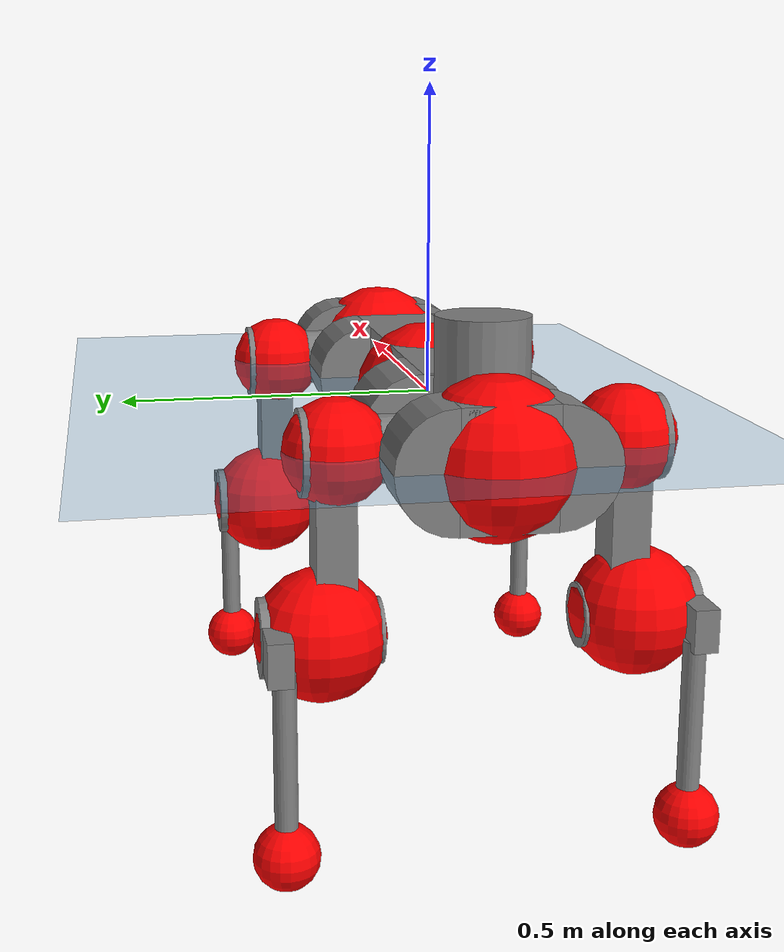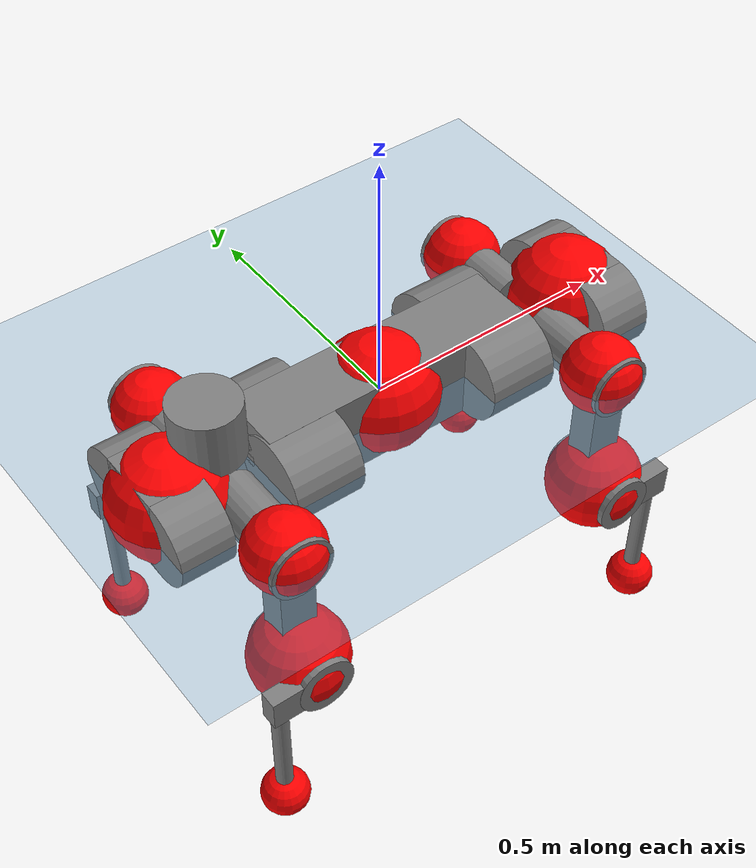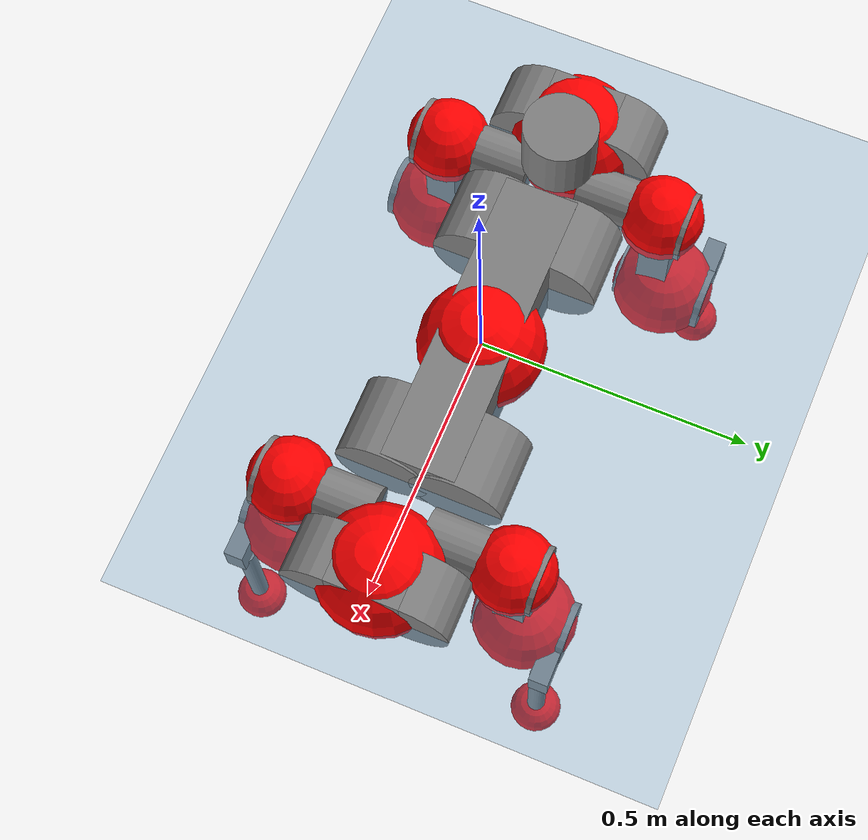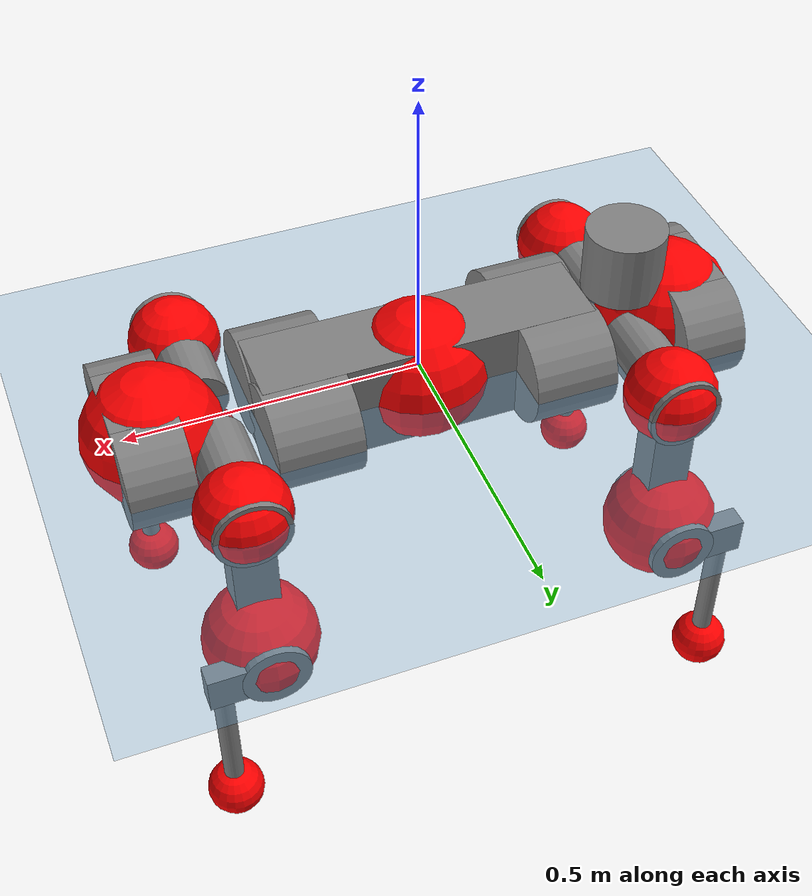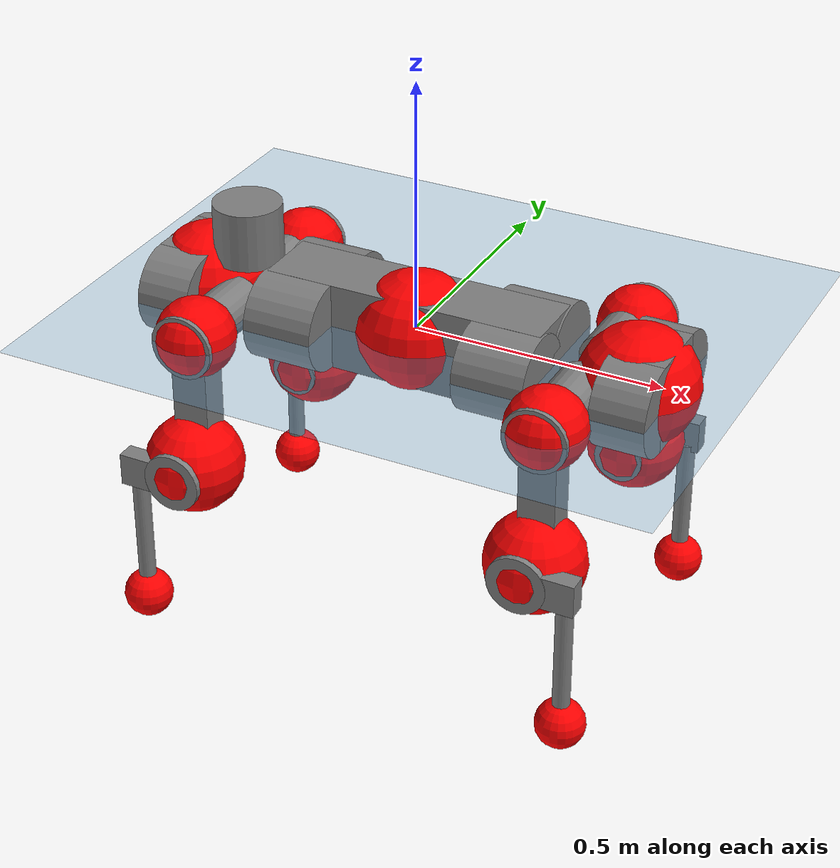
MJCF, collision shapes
<mujoco model="anymal_c">
  <compiler angle="radian" assetdir="assets" balanceinertia="true" inertiafromgeom="false"/>

  <option timestep="0.005" density="1.2" viscosity="2e-05"/>

  <size nkey="1"/>

  <visual>
    <quality shadowsize="8192"/>
    <map shadowclip="0.5"/>
  </visual>

  <default>
    <default class="/">
      <material specular="0" shininess="0.25"/>
      <geom contype="0" conaffinity="0" group="1" solref="-1000 -80"/>
      <site size="0.01 0.005 0.005" group="5"/>
      <general forcelimited="true" forcerange="-80 80" biastype="affine" gainprm="80" biasprm="0 -80 -2"/>
      <default class="anymal_c">
        <joint armature="0.01" damping="0.01" frictionloss="0.1"/>
        <default class="visual">
          <geom type="mesh" group="2"/>
          <default class="visual_zflip"/>
        </default>
        <default class="collision">
          <geom type="cylinder" group="3"/>
          <default class="foot">
            <geom size="0.03 0 0" type="sphere" condim="6" priority="1" friction="0.8 0.02 0.01" solimp="0.015 1 0.03"/>
          </default>
        </default>
      </default>
      <default class="reward_collision_sphere">
        <geom group="5" rgba="1 0 0 1"/>
      </default>
    </default>
  </default>

  <asset>
    <texture type="skybox" colorspace="auto" name="//unnamed_texture_0" builtin="gradient" rgb1="0.95 0.95 0.95" rgb2="0.95 0.95 0.95" width="100" height="600"/>
    <texture type="2d" colorspace="auto" name="texplane" builtin="checker" rgb1="0.345 0.575 0.748" rgb2="0.345 0.575 0.748" markrgb="1 1 1" width="512" height="512"/>
    <texture type="2d" colorspace="linear" name="base" file="base.png"/>
    <texture type="2d" colorspace="linear" name="top_shell" file="top_shell.png"/>
    <texture type="2d" colorspace="linear" name="bottom_shell" file="bottom_shell.png"/>
    <texture type="2d" colorspace="linear" name="remote" file="remote.png"/>
    <texture type="2d" colorspace="linear" name="hatch" file="hatch.png"/>
    <texture type="2d" colorspace="linear" name="handle" file="handle.png"/>
    <texture type="2d" colorspace="linear" name="face" file="face.png"/>
    <texture type="2d" colorspace="linear" name="battery" file="battery.png"/>
    <texture type="2d" colorspace="linear" name="lidar_cage" file="lidar_cage.png"/>
    <texture type="2d" colorspace="linear" name="depth_camera" file="depth_camera.png"/>
    <texture type="2d" colorspace="linear" name="wide_angle_camera" file="wide_angle_camera.png"/>
    <texture type="2d" colorspace="linear" name="lidar" file="lidar.png"/>
    <texture type="2d" colorspace="linear" name="drive" file="drive.png"/>
    <texture type="2d" colorspace="linear" name="hip_l" file="hip_l.png"/>
    <texture type="2d" colorspace="linear" name="shank_l" file="shank_l.png"/>
    <texture type="2d" colorspace="linear" name="foot" file="foot.png"/>
    <texture type="2d" colorspace="linear" name="thigh" file="thigh.png"/>
    <texture type="2d" colorspace="linear" name="shank_r" file="shank_r.png"/>
    <texture type="2d" colorspace="linear" name="hip_r" file="hip_r.png"/>
    <material name="MatPlane" class="/" texture="texplane" texuniform="true" texrepeat="2 2" specular="0.9" shininess="0.5"/>
    <material name="black_plastic" class="/" rgba="0.007 0.007 0.007 1"/>
    <material name="green" class="/" rgba="0.052 0.178 0.033 1"/>
    <material name="red" class="/" rgba="0.178 0.006 0.005 1"/>
    <material name="yellow" class="/" rgba="0.178 0.119 0.006 1"/>
    <material name="lwl" class="/" rgba="0.8 0.8 0.8 1"/>
    <material name="base" class="/" texture="base"/>
    <material name="top_shell" class="/" texture="top_shell"/>
    <material name="bottom_shell" class="/" texture="bottom_shell"/>
    <material name="hip_l" class="/" texture="hip_l"/>
    <material name="thigh" class="/" texture="thigh"/>
    <material name="shank_l" class="/" texture="shank_l"/>
    <material name="foot" class="/" texture="foot"/>
    <material name="hip_r" class="/" texture="hip_r"/>
    <material name="shank" class="/" texture="shank_r"/>
    <material name="hatch" class="/" texture="hatch"/>
    <material name="remote" class="/" texture="remote"/>
    <material name="handle" class="/" texture="handle"/>
    <material name="face" class="/" texture="face"/>
    <material name="depth_camera" class="/" texture="depth_camera"/>
    <material name="wide_angle_camera" class="/" texture="wide_angle_camera"/>
    <material name="battery" class="/" texture="battery"/>
    <material name="lidar_cage" class="/" texture="lidar_cage"/>
    <material name="lidar" class="/" texture="lidar"/>
    <material name="drive" class="/" texture="drive"/>
    <mesh name="base_0" class="/" file="base_0.obj"/>
    <mesh name="base_1" class="/" file="base_1.obj"/>
    <mesh name="base_2" class="/" file="base_2.obj"/>
    <mesh name="base_3" class="/" file="base_3.obj"/>
    <mesh name="base_4" class="/" file="base_4.obj"/>
    <mesh name="base_5" class="/" file="base_5.obj"/>
    <mesh name="top_shell" class="/" file="top_shell.obj"/>
    <mesh name="bottom_shell" class="/" file="bottom_shell.obj"/>
    <mesh name="remote" class="/" file="remote.obj"/>
    <mesh name="handle" class="/" file="handle.obj"/>
    <mesh name="face" class="/" file="face.obj"/>
    <mesh name="wide_angle_camera" class="/" file="wide_angle_camera.obj"/>
    <mesh name="depth_camera" class="/" file="depth_camera.obj"/>
    <mesh name="battery" class="/" file="battery.obj"/>
    <mesh name="lidar_cage" class="/" file="lidar_cage.obj"/>
    <mesh name="lidar" class="/" file="lidar.obj"/>
    <mesh name="drive" class="/" file="drive.obj"/>
    <mesh name="hip_l" class="/" file="hip_l.obj"/>
    <mesh name="thigh" class="/" file="thigh.obj"/>
    <mesh name="shank_l" class="/" file="shank_l.obj"/>
    <mesh name="foot" class="/" file="foot.obj"/>
    <mesh name="hip_r" class="/" file="hip_r.obj"/>
    <mesh name="hatch" class="/" file="hatch.obj"/>
    <mesh name="shank_r" class="/" file="shank_r.obj"/>
  </asset>

  <worldbody>
    <geom name="floor" class="/" size="100 100 0.125" type="plane" group="0" material="MatPlane"/>
    <light name="toplight_shadow" class="/" pos="0 0 5" dir="0.0990148 0.0990148 -0.990148" type="directional" ambient="0.04 0.04 0.04" diffuse="0.55 0.55 0.55" specular="0.12 0.12 0.12"/>
    <light name="toplight_fill" class="/" pos="0 0 5" dir="0.0990148 0.0990148 -0.990148" type="directional" castshadow="false" ambient="0.04 0.04 0.04" diffuse="0.3 0.3 0.3" specular="0.08 0.08 0.08"/>
    <body name="trunk" childclass="anymal_c" pos="0.000389731 0.00103787 -0.00270559" quat="1 0.000168026 0.000453506 -0.000405984">
      <inertial pos="0.00158354 0.00222989 0.0451499" quat="0.499243 0.500407 0.500436 0.499913" mass="18.3407" diaginertia="0.659092 0.613605 0.171559"/>
      <joint name="//unnamed_joint_0" type="free" armature="0" damping="0" frictionloss="0"/>
      <geom name="//unnamed_geom_1" class="visual" material="green" mesh="base_0"/>
      <geom name="//unnamed_geom_2" class="visual" material="yellow" mesh="base_1"/>
      <geom name="//unnamed_geom_3" class="visual" material="red" mesh="base_2"/>
      <geom name="//unnamed_geom_4" class="visual" material="black_plastic" mesh="base_3"/>
      <geom name="//unnamed_geom_5" class="visual" material="lwl" mesh="base_4"/>
      <geom name="//unnamed_geom_6" class="visual" material="base" mesh="base_5"/>
      <geom name="trunk_1" class="collision" size="0.284628 0.0687032 0.0883327" type="box"/>
      <geom name="trunk_2" class="collision" size="0.0883327 0.0711569" pos="0.218277 0.0695781 0" quat="0.707107 0 0.707107 0"/>
      <geom name="trunk_3" class="collision" size="0.0883327 0.0711569" pos="-0.218277 0.0695781 0" quat="0.707107 0 0.707107 0"/>
      <geom name="trunk_4" class="collision" size="0.0883327 0.0711569" pos="0.218277 -0.0695781 0" quat="0.707107 0 0.707107 0"/>
      <geom name="trunk_5" class="collision" size="0.0883327 0.0711569" pos="-0.218277 -0.0695781 0" quat="0.707107 0 0.707107 0"/>
      <geom name="//unnamed_geom_12" class="visual" material="top_shell" mesh="top_shell"/>
      <geom name="//unnamed_geom_13" class="visual" material="bottom_shell" mesh="bottom_shell"/>
      <geom name="//unnamed_geom_14" class="visual" material="remote" mesh="remote"/>
      <geom name="//unnamed_geom_15" class="visual" material="handle" mesh="handle"/>
      <geom name="//unnamed_geom_16" class="visual" pos="0.415981 0 0" quat="1 0 0 0" material="face" mesh="face"/>
      <geom name="trunk_6" class="collision" size="0.0539811 0.0687032 0.0883327" pos="0.471178 0 0" type="box"/>
      <geom name="//unnamed_geom_18" class="collision" size="0.0883327 0.0539811" pos="0.471178 0.0695781 0" quat="0.707107 0 0.707107 0"/>
      <geom name="//unnamed_geom_19" class="collision" size="0.0883327 0.0539811" pos="0.471178 -0.0695781 0" quat="0.707107 0 0.707107 0"/>
      <geom name="//unnamed_geom_20" class="visual" pos="0.463298 0 -0.0272179" quat="0.965926 0 0.258819 0" material="depth_camera" mesh="depth_camera"/>
      <geom name="//unnamed_geom_21" class="visual" pos="0.514833 0 0.0141747" material="wide_angle_camera" mesh="wide_angle_camera"/>
      <geom name="//unnamed_geom_22" class="visual_zflip" pos="-0.415981 0 0" quat="0 0 0 1" material="face" mesh="face"/>
      <geom name="trunk_7" class="collision" size="0.0539811 0.0687032 0.0883327" pos="-0.471178 0 0" quat="0 0 0 1" type="box"/>
      <geom name="//unnamed_geom_24" class="collision" size="0.0883327 0.0539811" pos="-0.471178 -0.0695781 0" quat="0 -0.707107 0 0.707107"/>
      <geom name="//unnamed_geom_25" class="collision" size="0.0883327 0.0539811" pos="-0.471178 0.0695781 0" quat="0 -0.707107 0 0.707107"/>
      <geom name="//unnamed_geom_26" class="visual" pos="-0.463298 0 -0.0272179" quat="0 -0.258819 0 0.965926" material="depth_camera" mesh="depth_camera"/>
      <geom name="//unnamed_geom_27" class="visual_zflip" pos="-0.514833 0 0.0141747" quat="0 0 0 1" material="wide_angle_camera" mesh="wide_angle_camera"/>
      <geom name="//unnamed_geom_28" class="visual" material="battery" mesh="battery"/>
      <geom name="//unnamed_geom_29" class="visual" pos="0 0.0758708 0.0279377" quat="0.683013 -0.183013 0.183013 0.683013" material="depth_camera" mesh="depth_camera"/>
      <geom name="//unnamed_geom_30" class="visual" pos="0 -0.0758708 0.0279377" quat="0.683013 0.183013 0.183013 -0.683013" material="depth_camera" mesh="depth_camera"/>
      <geom name="//unnamed_geom_31" class="visual" pos="-0.365301 0 0.0695954" quat="1 0 0 0" material="lidar_cage" mesh="lidar_cage"/>
      <geom name="trunk_8" class="collision" size="0.0687032 0.0588885" pos="-0.365301 0 0.126408"/>
      <geom name="//unnamed_geom_33" class="visual" pos="-0.365301 -3.77197e-06 0.134646" quat="0.707107 0 0 -0.707107" material="lidar" mesh="lidar"/>
      <geom name="//unnamed_geom_34" class="visual" pos="0.300972 0.103356 8.12414e-10" quat="0.258819 0.965926 0 0" material="drive" mesh="drive"/>
      <geom name="//unnamed_geom_35" class="visual" pos="0.300972 -0.103356 -8.12414e-10" quat="0.258819 -0.965926 0 0" material="drive" mesh="drive"/>
      <geom name="//unnamed_geom_36" class="visual" pos="-0.300972 0.103356 -8.12414e-10" quat="0 0 0.965926 -0.258819" material="drive" mesh="drive"/>
      <geom name="//unnamed_geom_37" class="visual" pos="-0.300972 -0.103356 8.12414e-10" quat="0 0 -0.965926 -0.258819" material="drive" mesh="drive"/>
      <geom name="//unnamed_geom_38" class="visual" pos="0.116415 0 0.069122" quat="1 0 0 0" material="hatch" mesh="hatch"/>
      <geom name="//unnamed_geom_39" class="reward_collision_sphere" size="0.117777"/>
      <geom name="//unnamed_geom_40" class="reward_collision_sphere" size="0.117777" pos="0.451608 0 0"/>
      <geom name="//unnamed_geom_41" class="reward_collision_sphere" size="0.117777" pos="-0.451608 0 0"/>
      <site name="imu" pos="0.254705 0.0224413 0.0513357" size="0.00981475"/>
      <camera name="track" pos="0 -1.98795 0" quat="0.707107 0.707107 0 0" mode="trackcom"/>
      <camera name="ego_camera" pos="0.451608 0 -0.0378751" quat="-0.5 -0.5 0.5 0.5"/>
      <body name="LF_HIP" pos="0.301508 0.102893 0.00144246" quat="0.258857 0.965915 0.00130119 -0.000322645">
        <inertial pos="0.0578269 -0.0174689 -0.0071985" quat="-0.125254 0.709362 -0.138712 0.679614" mass="2.56135" diaginertia="0.00603709 0.00498055 0.00251177"/>
        <joint name="LF_HAA" pos="0 0 0" axis="0.999993 -0.00255842 -0.00272144" range="-0.705319 0.501423" armature="0.00982705" damping="0.0245769" frictionloss="0.0995116"/>
        <geom name="//unnamed_geom_42" class="visual" pos="0 4.77907e-05 -7.84958e-06" quat="0.258819 -0.965926 0 0" material="hip_l" mesh="hip_l"/>
        <geom name="//unnamed_geom_43" class="visual" pos="0.0601141 -0.0726979 -0.0416238" quat="0.183013 -0.683013 0.683013 0.183013" material="drive" mesh="drive"/>
        <geom name="//unnamed_geom_44" class="collision" size="0.0490737 0.0687032" pos="0.0601141 -0.0118877 -0.00653818" quat="-0.353553 -0.612372 0.612372 -0.353553"/>
        <body name="LF_THIGH" pos="0.0633218 -0.0735827 -0.0363505" quat="0.183044 -0.682574 0.683624 0.182336">
          <inertial pos="0.0337336 -0.00270252 -0.234014" quat="0.993151 -0.00530854 -0.080717 0.0843073" mass="2.84694" diaginertia="0.0308329 0.0277122 0.0030874"/>
          <joint name="LF_HFE" pos="0 0 0" axis="0.999972 -0.00566834 0.00478961" stiffness="0.000521605" range="-3.09699 3.1344" armature="0.0086814" damping="0.010636" frictionloss="0.0880998"/>
          <geom name="//unnamed_geom_45" class="visual" pos="0.000191022 3.01006e-07 0" quat="0.707107 0 0 -0.707107" material="thigh" mesh="thigh"/>
          <geom name="//unnamed_geom_46" class="collision" size="0.0637958 0.039259" pos="0.040143 0 0" quat="0.5 0.5 -0.5 -0.5"/>
          <geom name="//unnamed_geom_47" class="collision" size="0.0368053 0.0294442 0.138696" pos="0.0301072 0 -0.133807" quat="0.707107 0 0 -0.707107" type="box"/>
          <geom name="//unnamed_geom_48" class="visual" pos="0.100658 0 -0.26986" quat="1 0 0 0" material="drive" mesh="drive"/>
          <geom name="//unnamed_geom_49" class="collision" size="0.0490737 0.0687032" pos="0.0304083 0 -0.26986" quat="0.707107 0 0.707107 0"/>
          <geom name="//unnamed_geom_50" class="reward_collision_sphere" size="0.078518" pos="0.0250893 0 0"/>
          <body name="LF_SHANK" pos="0.100508 -0.00163244 -0.269626" quat="0.999999 -0.000759026 0.000494923 0.0011614">
            <inertial pos="0.00334041 -0.0613223 -0.0736752" quat="0.992189 -0.121188 0.0090868 -0.0281345" mass="0.555248" diaginertia="0.00999936 0.00929273 0.000871175"/>
            <joint name="LF_KFE" pos="0 0 0" axis="0.999936 0.00805577 -0.00791321" stiffness="0.00730547" range="-3.16739 3.11964" armature="0.0110713" damping="0" frictionloss="0.111895"/>
            <geom name="//unnamed_geom_51" class="visual" pos="6.22881e-05 0.000332124 0" quat="0.707107 0 0 -0.707107" material="shank_l" mesh="shank_l"/>
            <geom name="LF_kfe_act" class="collision" size="0.0588885 0.0196295" pos="0.0200715 0 0" quat="0.5 0.5 -0.5 -0.5"/>
            <geom name="//unnamed_geom_53" class="collision" size="0.0564338 0.0331248 0.018648" pos="0.0200715 -0.0571524 0" quat="0.5 0.5 -0.5 -0.5" type="box"/>
            <geom name="//unnamed_geom_54" class="visual" pos="0.0130966 -0.0873129 -0.320016" quat="0.382683 0 0 -0.92388" material="foot" mesh="foot"/>
            <geom name="LF_calf" class="collision" size="0.0171758 0.138635" pos="0.0130966 -0.0874199 -0.160008" quat="0.707107 0 0 -0.707107"/>
            <geom name="LF_foot" class="foot" size="0.0272589" pos="0.0130966 -0.0874199 -0.298711" quat="0.707107 0 0 -0.707107"/>
            <geom name="//unnamed_geom_57" class="reward_collision_sphere" size="0.0981475" pos="-0.0501787 0 0"/>
            <geom name="//unnamed_geom_58" class="reward_collision_sphere" size="0.0490737" pos="0.0130966 -0.0874199 -0.298711"/>
            <site name="LF_foot" class="foot" pos="0.0130966 -0.0874199 -0.298711" quat="0.707107 0 0 -0.707107" size="0.00981475"/>
          </body>
        </body>
      </body>
      <body name="RF_HIP" pos="0.301341 -0.102741 -0.00105199" quat="0.258561 -0.965994 0.000432492 -0.00118014">
        <inertial pos="0.0598336 0.0137899 -0.00831463" quat="0.145097 0.676788 0.129693 0.709989" mass="2.6182" diaginertia="0.0055743 0.00460799 0.00233172"/>
        <joint name="RF_HAA" pos="0 0 0" axis="0.999925 -0.00318761 -0.0118382" range="-0.455016 0.716292" armature="0.0105396" damping="0.00481088" frictionloss="0.0885104"/>
        <geom name="//unnamed_geom_59" class="visual" pos="0 -4.77903e-05 -7.84956e-06" quat="0.258819 0.965926 0 0" material="hip_r" mesh="hip_r"/>
        <geom name="//unnamed_geom_60" class="visual" pos="0.0601141 0.0726979 -0.0416238" quat="0.183013 0.683013 0.683013 -0.183013" material="drive" mesh="drive"/>
        <geom name="//unnamed_geom_61" class="collision" size="0.0490737 0.0687032" pos="0.0601141 0.0118877 -0.00653818" quat="-0.353553 0.612372 0.612372 0.353553"/>
        <body name="RF_THIGH" pos="0.0608303 0.0715378 -0.0394908" quat="0.182523 0.683382 0.682968 -0.18229">
          <inertial pos="0.0338928 -0.00245377 -0.231385" quat="0.99229 0.00398373 -0.0759087 0.0978874" mass="2.9021" diaginertia="0.0300938 0.0273476 0.00315502"/>
          <joint name="RF_HFE" pos="0 0 0" axis="0.999957 0.00712333 0.00599244" range="-3.1338 3.18424" armature="0.00990622" damping="0.00855687" frictionloss="0.110929"/>
          <geom name="//unnamed_geom_62" class="visual" pos="0.000191022 3.01006e-07 0" quat="0.707107 0 0 -0.707107" material="thigh" mesh="thigh"/>
          <geom name="//unnamed_geom_63" class="collision" size="0.0637958 0.039259" pos="0.040143 0 0" quat="0.5 0.5 0.5 0.5"/>
          <geom name="//unnamed_geom_64" class="collision" size="0.0368053 0.0294442 0.138696" pos="0.0301072 0 -0.133807" quat="0.707107 0 0 0.707107" type="box"/>
          <geom name="//unnamed_geom_65" class="visual" pos="0.100658 0 -0.26986" quat="1 0 0 0" material="drive" mesh="drive"/>
          <geom name="//unnamed_geom_66" class="collision" size="0.0490737 0.0687032" pos="0.0304083 0 -0.26986" quat="0.707107 0 0.707107 0"/>
          <geom name="//unnamed_geom_67" class="reward_collision_sphere" size="0.078518" pos="0.0250893 0 0"/>
          <body name="RF_SHANK" pos="0.09848 -0.00214403 -0.271997" quat="1 -1.83969e-05 1.28237e-05 1.25758e-05">
            <inertial pos="0.00517764 0.0598809 -0.0762152" quat="0.991961 0.12374 -0.00188073 0.0264276" mass="0.561253" diaginertia="0.0103531 0.00895512 0.000822407"/>
            <joint name="RF_KFE" pos="0 0 0" axis="0.999997 0.00205697 0.0013272" range="-3.15618 3.19026" armature="0.00888974" damping="0.0212478" frictionloss="0.0862842"/>
            <geom name="//unnamed_geom_68" class="visual" pos="6.22878e-05 -0.000332123 0" quat="0.707107 0 0 0.707107" material="shank" mesh="shank_r"/>
            <geom name="RF_kfe_act" class="collision" size="0.0588885 0.0196295" pos="0.0200715 0 0" quat="0.5 0.5 0.5 0.5"/>
            <geom name="//unnamed_geom_70" class="collision" size="0.0564338 0.0331248 0.018648" pos="0.0200715 0.0571524 0" quat="0.5 0.5 0.5 0.5" type="box"/>
            <geom name="//unnamed_geom_71" class="visual" pos="0.0130967 0.0873129 -0.320016" quat="0.382683 0 0 0.92388" material="foot" mesh="foot"/>
            <geom name="RF_calf" class="collision" size="0.0171758 0.138635" pos="0.0130966 0.0874199 -0.160008" quat="0.707107 0 0 0.707107"/>
            <geom name="RF_foot" class="foot" size="0.0245849" pos="0.0130966 0.0874199 -0.298711" quat="0.707107 0 0 0.707107"/>
            <geom name="//unnamed_geom_74" class="reward_collision_sphere" size="0.0981475" pos="-0.0501787 0 0"/>
            <geom name="//unnamed_geom_75" class="reward_collision_sphere" size="0.0490737" pos="0.0130966 0.0874199 -0.298711"/>
            <site name="RF_foot" class="foot" pos="0.0130966 0.0874199 -0.298711" quat="0.707107 0 0 0.707107" size="0.00981475"/>
          </body>
        </body>
      </body>
      <body name="LH_HIP" pos="-0.300873 0.103003 -0.00178781" quat="-0.000284863 0.000190158 0.965921 -0.258837">
        <inertial pos="0.0593148 0.0160264 -0.0104482" quat="0.135404 0.678681 0.127512 0.710492" mass="2.68502" diaginertia="0.00593524 0.00483966 0.00256842"/>
        <joint name="LH_HAA" pos="0 0 0" axis="0.999999 0.00126167 -0.000886142" stiffness="0.00851216" range="-0.487366 0.667269" armature="0.00884331" damping="0.00168828" frictionloss="0.106134"/>
        <geom name="//unnamed_geom_76" class="visual" pos="0 -4.77903e-05 -7.84956e-06" quat="-0.258819 -0.965926 0 0" material="hip_r" mesh="hip_r"/>
        <geom name="//unnamed_geom_77" class="visual" pos="0.0601141 0.0726979 -0.0416238" quat="0.183013 0.683013 0.683013 -0.183013" material="drive" mesh="drive"/>
        <geom name="//unnamed_geom_78" class="collision" size="0.0490737 0.0687032" pos="0.0601141 0.0118877 -0.00653818" quat="-0.353553 0.612372 0.612372 0.353553"/>
        <body name="LH_THIGH" pos="0.0597642 0.0703234 -0.0386069" quat="0.183078 0.68304 0.682967 -0.183013">
          <inertial pos="0.0307105 -0.00010706 -0.232391" quat="0.993059 0.00391647 -0.0753592 0.0902208" mass="2.98494" diaginertia="0.0309481 0.0294658 0.00334891"/>
          <joint name="LH_HFE" pos="0 0 0" axis="0.999926 -0.0110945 0.00494557" stiffness="0.00891096" range="-3.16204 3.11788" armature="0.0109473" damping="0" frictionloss="0.0986613"/>
          <geom name="//unnamed_geom_79" class="visual" pos="0.000191022 3.01006e-07 0" quat="0.707107 0 0 -0.707107" material="thigh" mesh="thigh"/>
          <geom name="//unnamed_geom_80" class="collision" size="0.0637958 0.039259" pos="0.040143 0 0" quat="0.5 0.5 -0.5 -0.5"/>
          <geom name="//unnamed_geom_81" class="collision" size="0.0368053 0.0294442 0.138696" pos="0.0301072 0 -0.133807" quat="0.707107 0 0 -0.707107" type="box"/>
          <geom name="//unnamed_geom_82" class="visual" pos="0.100658 0 -0.26986" quat="1 0 0 0" material="drive" mesh="drive"/>
          <geom name="//unnamed_geom_83" class="collision" size="0.0490737 0.0687032" pos="0.0304083 0 -0.26986" quat="0.707107 0 0.707107 0"/>
          <geom name="//unnamed_geom_84" class="reward_collision_sphere" size="0.078518" pos="0.0250893 0 0"/>
          <body name="LH_SHANK" pos="0.0999358 -0.00101312 -0.270983" quat="1 1.70359e-05 -6.12324e-06 1.64812e-05">
            <inertial pos="0.00338867 0.0614654 -0.0773964" quat="0.992208 0.119509 0.00955235 0.0339173" mass="0.570862" diaginertia="0.0102233 0.00906525 0.000866458"/>
            <joint name="LH_KFE" pos="0 0 0" axis="0.999984 0.00390621 -0.00415466" range="-3.1462 3.1919" armature="0.0111047" damping="0" frictionloss="0.102293"/>
            <geom name="//unnamed_geom_85" class="visual" pos="6.22878e-05 -0.000332123 0" quat="-0.707107 0 0 -0.707107" material="shank" mesh="shank_r"/>
            <geom name="LH_kfe_act" class="collision" size="0.0588885 0.0196295" pos="0.0200715 0 0" quat="0.5 0.5 -0.5 -0.5"/>
            <geom name="//unnamed_geom_87" class="collision" size="0.0564338 0.0331248 0.018648" pos="0.0200715 0.0571524 0" quat="0.5 0.5 -0.5 -0.5" type="box"/>
            <geom name="//unnamed_geom_88" class="visual" pos="0.0130967 0.0873129 -0.320016" quat="-0.382683 0 0 -0.92388" material="foot" mesh="foot"/>
            <geom name="LH_calf" class="collision" size="0.0171758 0.138635" pos="0.0130966 0.0874199 -0.160008" quat="0.707107 0 0 -0.707107"/>
            <geom name="LH_foot" class="foot" size="0.0292439" pos="0.0130966 0.0874199 -0.298711" quat="0.707107 0 0 -0.707107"/>
            <geom name="//unnamed_geom_91" class="reward_collision_sphere" size="0.0981475" pos="-0.0501787 0 0"/>
            <geom name="//unnamed_geom_92" class="reward_collision_sphere" size="0.0490737" pos="0.0130966 0.0874199 -0.298711"/>
            <site name="LH_foot" class="foot" pos="0.0130966 0.0874199 -0.298711" quat="0.707107 0 0 -0.707107" size="0.00981475"/>
          </body>
        </body>
      </body>
      <body name="RH_HIP" pos="-0.299083 -0.106071 0.000133755" quat="-3.15382e-06 -0.000300865 -0.966022 -0.258461">
        <inertial pos="0.0576561 -0.012777 -0.00884292" quat="-0.135285 0.701842 -0.132684 0.686666" mass="2.6319" diaginertia="0.00600151 0.00483445 0.00254504"/>
        <joint name="RH_HAA" pos="0 0 0" axis="0.999995 0.00314907 -0.000793541" stiffness="0.00858255" range="-0.682972 0.49072" armature="0.00837789" damping="0.0130833" frictionloss="0.0993822"/>
        <geom name="//unnamed_geom_93" class="visual" pos="0 4.77907e-05 -7.84958e-06" quat="-0.258819 0.965926 0 0" material="hip_l" mesh="hip_l"/>
        <geom name="//unnamed_geom_94" class="visual" pos="0.0601141 -0.0726979 -0.0416238" quat="-0.183013 0.683013 -0.683013 -0.183013" material="drive" mesh="drive"/>
        <geom name="//unnamed_geom_95" class="collision" size="0.0490737 0.0687032" pos="0.0601141 -0.0118877 -0.00653818" quat="0.353553 0.612372 -0.612372 0.353553"/>
        <body name="RH_THIGH" pos="0.0588894 -0.073264 -0.0406788" quat="-0.183013 0.683013 -0.683011 -0.183014">
          <inertial pos="0.0319052 0.000479402 -0.23258" quat="0.993201 -0.00534978 -0.0799515 0.0844442" mass="2.84025" diaginertia="0.0308868 0.0300735 0.0032114"/>
          <joint name="RH_HFE" pos="0 0 0" axis="0.999994 0.00181374 -0.00290808" stiffness="0.0086307" range="-3.14541 3.18075" armature="0.0102629" damping="0.00537098" frictionloss="0.0996589"/>
          <geom name="//unnamed_geom_96" class="visual" pos="0.000191022 3.01006e-07 0" quat="0.707107 0 0 -0.707107" material="thigh" mesh="thigh"/>
          <geom name="//unnamed_geom_97" class="collision" size="0.0637958 0.039259" pos="0.040143 0 0" quat="0.5 0.5 0.5 0.5"/>
          <geom name="//unnamed_geom_98" class="collision" size="0.0368053 0.0294442 0.138696" pos="0.0301072 0 -0.133807" quat="0.707107 0 0 0.707107" type="box"/>
          <geom name="//unnamed_geom_99" class="visual" pos="0.100658 0 -0.26986" quat="1 0 0 0" material="drive" mesh="drive"/>
          <geom name="//unnamed_geom_100" class="collision" size="0.0490737 0.0687032" pos="0.0304083 0 -0.26986" quat="0.707107 0 0.707107 0"/>
          <geom name="//unnamed_geom_101" class="reward_collision_sphere" size="0.078518" pos="0.0250893 0 0"/>
          <body name="RH_SHANK" pos="0.100991 -0.00118793 -0.265904" quat="1 -1.29012e-06 0.000193657 -9.16415e-06">
            <inertial pos="0.00301449 -0.0612499 -0.0758659" quat="0.991823 -0.126516 -0.00320552 -0.0164306" mass="0.561369" diaginertia="0.0105998 0.00887307 0.000871483"/>
            <joint name="RH_KFE" pos="0 0 0" axis="0.999961 0.00307172 -0.00822695" range="-3.15161 3.13095" armature="0.00909193" damping="0.0175093" frictionloss="0.0917012"/>
            <geom name="//unnamed_geom_102" class="visual" pos="6.22881e-05 0.000332124 0" quat="0.707107 0 0 -0.707107" material="shank_l" mesh="shank_l"/>
            <geom name="RH_kfe_act" class="collision" size="0.0588885 0.0196295" pos="0.0200715 0 0" quat="0.5 0.5 0.5 0.5"/>
            <geom name="//unnamed_geom_104" class="collision" size="0.0564338 0.0331248 0.018648" pos="0.0200715 -0.0571524 0" quat="0.5 0.5 0.5 0.5" type="box"/>
            <geom name="//unnamed_geom_105" class="visual" pos="0.0130966 -0.0873129 -0.320016" quat="0.382683 0 0 -0.92388" material="foot" mesh="foot"/>
            <geom name="RH_calf" class="collision" size="0.0171758 0.138635" pos="0.0130966 -0.0874199 -0.160008" quat="0.707107 0 0 0.707107"/>
            <geom name="RH_foot" class="foot" size="0.0281769" pos="0.0130966 -0.0874199 -0.298711" quat="0.707107 0 0 0.707107"/>
            <geom name="//unnamed_geom_108" class="reward_collision_sphere" size="0.0981475" pos="-0.0501787 0 0"/>
            <geom name="//unnamed_geom_109" class="reward_collision_sphere" size="0.0490737" pos="0.0130966 -0.0874199 -0.298711"/>
            <site name="RH_foot" class="foot" pos="0.0130966 -0.0874199 -0.298711" quat="0.707107 0 0 0.707107" size="0.00981475"/>
          </body>
        </body>
      </body>
    </body>
  </worldbody>

  <contact>
    <pair class="/" geom1="floor" geom2="LF_foot" name="//unnamed_contact_0"/>
    <pair class="/" geom1="floor" geom2="RF_foot" name="//unnamed_contact_1"/>
    <pair class="/" geom1="floor" geom2="LH_foot" name="//unnamed_contact_2"/>
    <pair class="/" geom1="floor" geom2="RH_foot" name="//unnamed_contact_3"/>
  </contact>

  <actuator>
    <general name="LF_HAA" class="/" joint="LF_HAA" forcerange="-78.805 78.805" gainprm="83.8089" biasprm="0 -83.8089 -1.9708"/>
    <general name="LF_HFE" class="/" joint="LF_HFE" forcerange="-70.1932 70.1932" gainprm="83.8089" biasprm="0 -83.8089 -1.9708"/>
    <general name="LF_KFE" class="/" joint="LF_KFE" forcerange="-81.079 81.079" gainprm="83.8089" biasprm="0 -83.8089 -1.9708"/>
    <general name="RF_HAA" class="/" joint="RF_HAA" forcerange="-80.057 80.057" gainprm="83.8089" biasprm="0 -83.8089 -1.9708"/>
    <general name="RF_HFE" class="/" joint="RF_HFE" forcerange="-89.0293 89.0293" gainprm="83.8089" biasprm="0 -83.8089 -1.9708"/>
    <general name="RF_KFE" class="/" joint="RF_KFE" forcerange="-77.6738 77.6738" gainprm="83.8089" biasprm="0 -83.8089 -1.9708"/>
    <general name="LH_HAA" class="/" joint="LH_HAA" forcerange="-81.543 81.543" gainprm="83.8089" biasprm="0 -83.8089 -1.9708"/>
    <general name="LH_HFE" class="/" joint="LH_HFE" forcerange="-71.3678 71.3678" gainprm="83.8089" biasprm="0 -83.8089 -1.9708"/>
    <general name="LH_KFE" class="/" joint="LH_KFE" forcerange="-75.6004 75.6004" gainprm="83.8089" biasprm="0 -83.8089 -1.9708"/>
    <general name="RH_HAA" class="/" joint="RH_HAA" forcerange="-71.1456 71.1456" gainprm="83.8089" biasprm="0 -83.8089 -1.9708"/>
    <general name="RH_HFE" class="/" joint="RH_HFE" forcerange="-82.4182 82.4182" gainprm="83.8089" biasprm="0 -83.8089 -1.9708"/>
    <general name="RH_KFE" class="/" joint="RH_KFE" forcerange="-77.6106 77.6106" gainprm="83.8089" biasprm="0 -83.8089 -1.9708"/>
  </actuator>

  <sensor>
    <gyro site="imu" name="imu_angular_velocity"/>
    <velocimeter site="imu" name="imu_linear_velocity"/>
    <framelinvel objtype="site" objname="LF_foot" name="LF_foot_global_linear_velocity"/>
    <framelinvel objtype="site" objname="RF_foot" name="RF_foot_global_linear_velocity"/>
    <framelinvel objtype="site" objname="LH_foot" name="LH_foot_global_linear_velocity"/>
    <framelinvel objtype="site" objname="RH_foot" name="RH_foot_global_linear_velocity"/>
  </sensor>

  <keyframe>
    <key name="home" qpos="0 0 0.55 1 0 0 0 0 0.4 -0.8 0 -0.4 0.8 0 -0.4 0.8 0 0.4 -0.8"/>
  </keyframe>
</mujoco>
